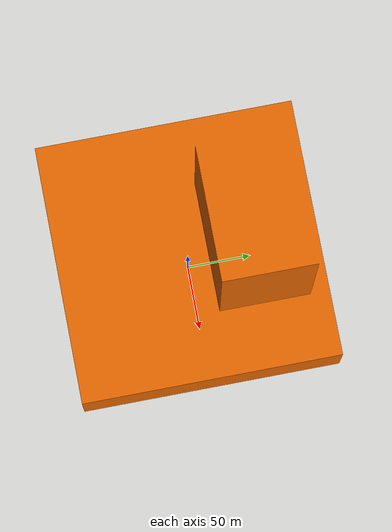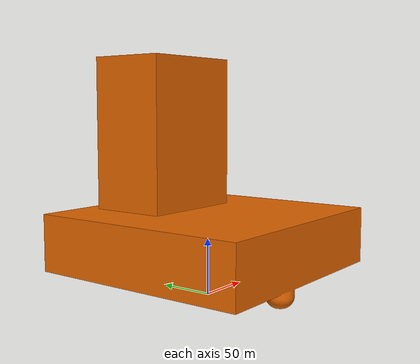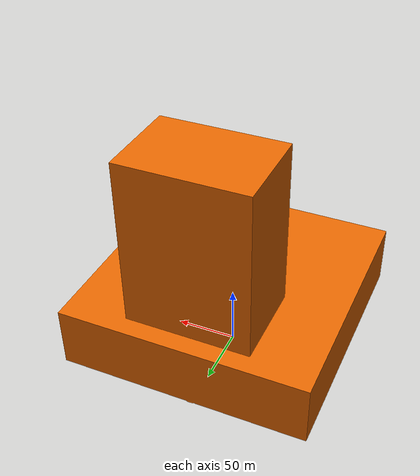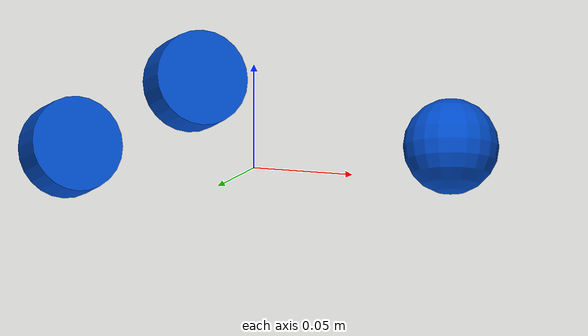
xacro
<?xml version="1.0"?>
<robot xmlns:xacro="http://www.ros.org/wiki/xacro" >

    <!-- BASE_FOOTPRINT -->
    <link name="base_footprint"/>
    <joint name="base_joint" type="fixed">
        <parent link="base_footprint"/>
        <child link="base_link"/>
        <origin xyz="0 0 0.040" rpy="0 0 1.5708"/>
    </joint>

     <!-- Base Link -->
    <link name="base_link">
        <visual>
        <origin xyz="0 0 0" rpy="0 0 0"/>
        <geometry>
            <mesh filename="package://rosbot_description/meshes/base_link.stl"/>
        </geometry>
        <material name="burnt_orange">
            <color rgba="0.9 0.4 0.0 1.0"/>
        </material>
        </visual>
        <collision>
            <origin xyz="0 0 0" rpy="0 0 0"/>
            <geometry>
                <mesh filename="package://rosbot_description/meshes/base_link.stl"/>
            </geometry>
        </collision>
        <inertial>
        <origin xyz="-0.0001 0.012743 0.047204" rpy="0 0 0"/>
        <mass value="1.532453"/>
        <inertia
            ixx="0.009044" ixy="-0.0001165" ixz="-0.0000436358"
            iyy="0.006928" iyz="0.0004711"
            izz="0.0105"/>
        </inertial>
    </link>

    <!-- LEFT WHEEL LINK -->

    <joint name="wheel_left_joint" type="continuous">
        <parent link="base_link"/>
        <child link="wheel_left_link"/>
        <origin xyz="0.088 0.06100 -0.01800" rpy="0 0 0"/>
        <axis xyz="1 0 0"/>
    </joint>

    <link name="wheel_left_link">
        <visual>
            <origin xyz="0 0 0" rpy="0 1.5708 0"/>
            <geometry>
                <cylinder radius="0.023" length="0.0200"/>
            </geometry>
            <material name="metallic_blue">
                <color rgba="0.0 0.3 0.8 1.0"/>
            </material>
        </visual>
        <collision>
            <origin xyz="0 0 0" rpy="0 1.5708 0"/>
            <geometry>
                <cylinder radius="0.023" length="0.0200"/>
            </geometry>
        </collision>
        <inertial>
            <origin xyz="0 0 0" rpy="0 1.5708 0"/>
            <mass value="0.03"/>
            <inertia ixx="0.000048" ixy="0.0" ixz="0.0"
                    iyy="0.000048" iyz="0.0"
                    izz="0.0000079"/>
        </inertial>
    </link>

    <!-- RIGHT WHEEL LINK -->

    <joint name="wheel_right_joint" type="continuous">
        <parent link="base_link"/>
        <child link="wheel_right_link"/>
        <origin xyz="-0.085 0.06100 -0.01750" rpy="0 0 0"/>
        <axis xyz="1 0 0"/>
    </joint>

    <link name="wheel_right_link">
        <visual>
            <origin xyz="0 0 0" rpy="0 1.5708 0"/>
            <geometry>
                <cylinder radius="0.023" length="0.0200"/>
            </geometry>
            <material name="metallic_blue">
                <color rgba="0.0 0.3 0.8 1.0"/>
            </material>
        </visual>
        <collision>
            <origin xyz="0 0 0" rpy="0 1.5708 0"/>
            <geometry>
                <cylinder radius="0.023" length="0.0200"/>
            </geometry>
        </collision>
        <inertial>
            <origin xyz="0 0 0" rpy="0 1.5708 0"/>
            <mass value="0.03"/>
            <inertia ixx="0.000048" ixy="0.0" ixz="0.0"
                    iyy="0.000048" iyz="0.0"
                    izz="0.0000079"/>
        </inertial>
    </link>

    <!-- CASTER WHEEL LINK -->

    <joint name="caster_wheel_joint" type="fixed">
        <parent link="base_link"/>
        <child link="caster_wheel_link"/>
        <origin rpy="0 0 0" xyz="0 -0.100 -0.023"/>
    </joint>

    <link name="caster_wheel_link">
        <visual>
            <origin rpy="0 0 0" xyz="0 0 0"/>
            <geometry>
                <sphere radius="0.023"/>
            </geometry>
            <material name="metallic_blue">
                <color rgba="0.0 0.3 0.8 1.0"/>
            </material>
        </visual>
        <collision>
            <origin xyz="0 0 0" rpy="0 0 0"/>
            <geometry>
                <sphere radius="0.023"/>
            </geometry>
        </collision>
        <inertial>
            <origin xyz="0 0 0" rpy="0 0 0"/>
            <mass value="0.05"/>
            <inertia ixx="0.000016" ixy="0.0" ixz="0.0"
                    iyy="0.000016" iyz="0.0"
                    izz="0.000016"/>
        </inertial>
    </link>

</robot>
